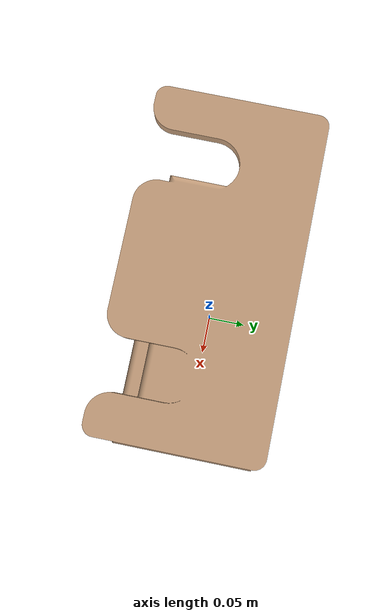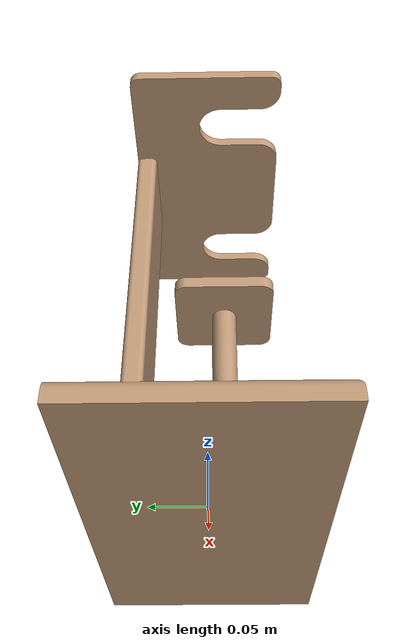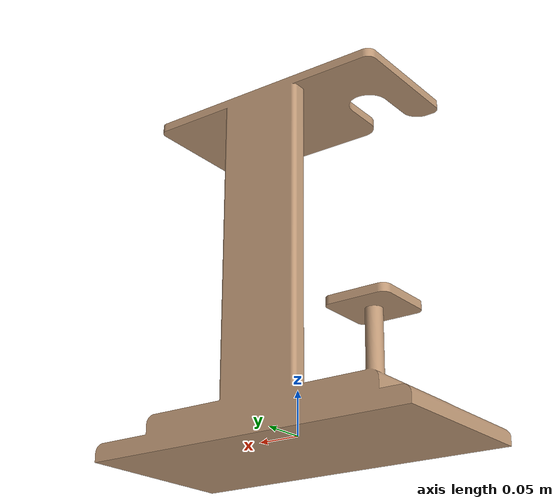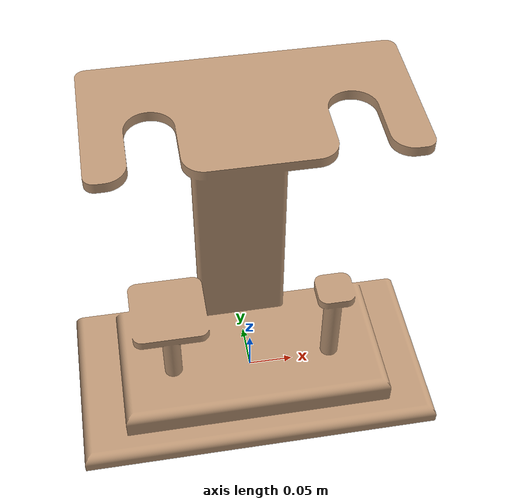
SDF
<?xml version="1.0" ?>
<sdf version="1.6">
  <model name="executor_bracket">
    <static>false</static>
    <link name="link">
      <inertial>
        <mass>20.0</mass>
        <inertia>
          <ixx>0.01</ixx>
          <iyy>0.01</iyy>
          <izz>0.01</izz>
          <ixy>0.0</ixy>
          <ixz>0.0</ixz>
          <iyz>0.0</iyz>
        </inertia>
      </inertial>
      <visual name="visual">
        <geometry>
          <mesh>
            <uri>model://executor_bracket/meshes/executor_bracket.dae</uri>
          </mesh>
        </geometry>
      </visual>
      <collision name="collision">
        <geometry>
          <mesh>
            <uri>model://executor_bracket/meshes/executor_bracket.dae</uri>
          </mesh>
        </geometry>
      </collision>
    </link>
  </model>
</sdf>
